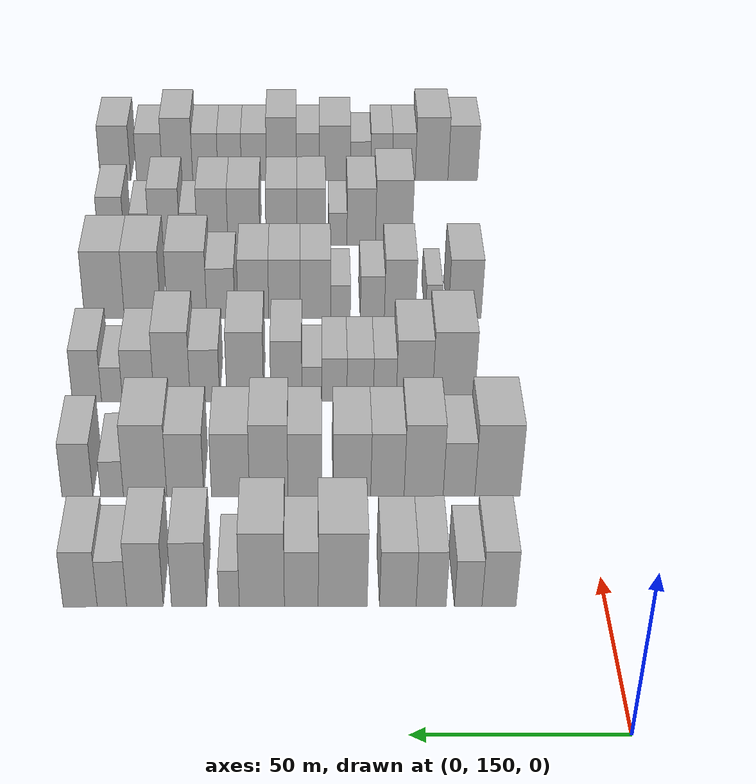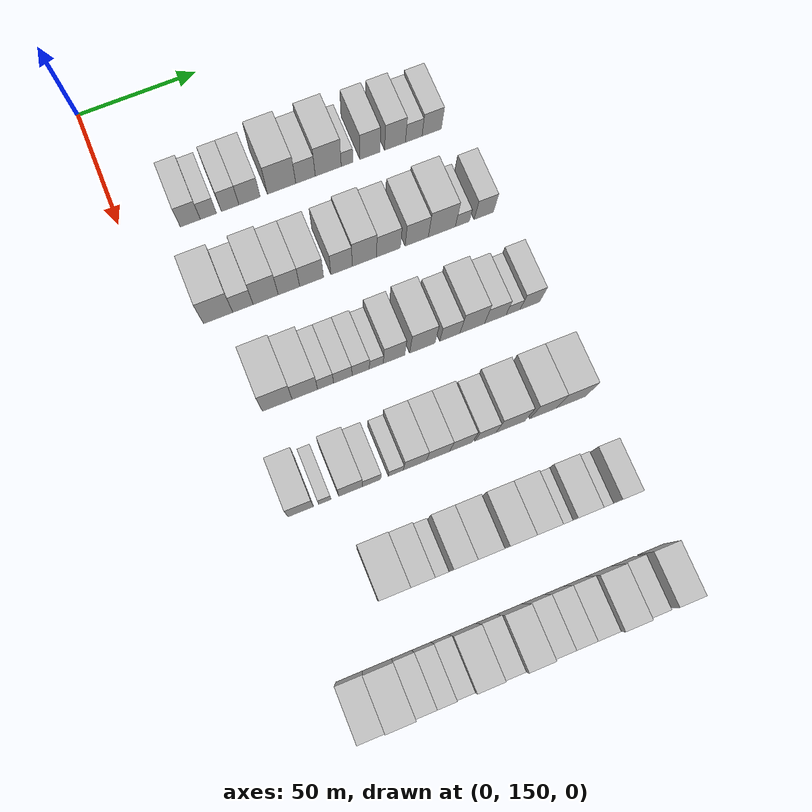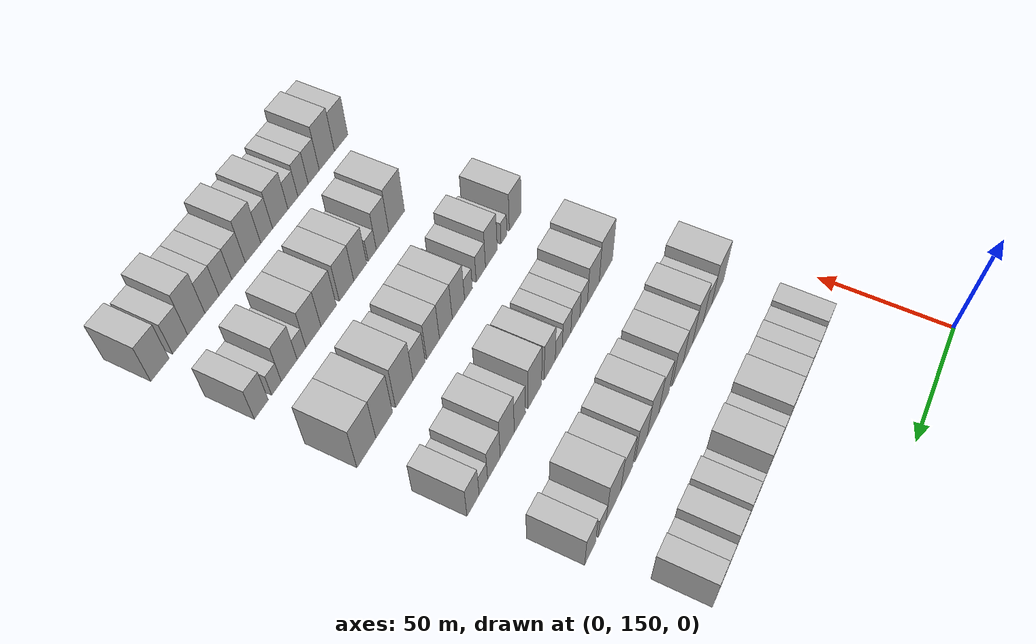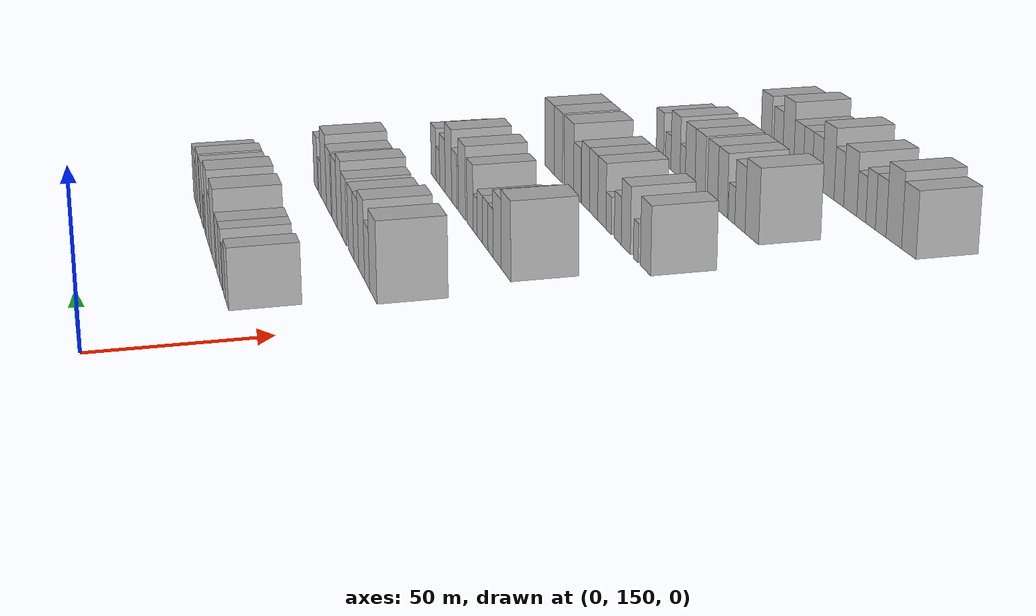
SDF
<sdf version="1.6">
 <world name="default">
  <model name="building_82">
   <static>1</static>
   <pose>50.0000 176.1334 0 0.000000 0.000000 0.000000</pose>
   <link name="link">
    <pose>0 0 9.00 0 0 0</pose>
    <collision name="collision"><geometry><box><size>20.0000 8.2728 18.0000</size></box></geometry></collision>
    <visual name="visual">
     <cast_shadows>0</cast_shadows>
     <geometry><box><size>20.0000 8.2728 18.0000</size></box></geometry>
     <material>
      <script>
       <uri>model://HANNAS_wall/materials/scripts</uri>
       <uri>model://HANNAS_wall/materials/textures</uri>
       <name>vrc/HANNAS_wall</name>
      </script>
     </material>
    </visual>
   </link>
  </model>
  <model name="building_83">
   <static>1</static>
   <pose>50.0000 183.6065 0 0.000000 0.000000 0.000000</pose>
   <link name="link">
    <pose>0 0 7.50 0 0 0</pose>
    <collision name="collision"><geometry><box><size>20.0000 6.6735 15.0000</size></box></geometry></collision>
    <visual name="visual">
     <cast_shadows>0</cast_shadows>
     <geometry><box><size>20.0000 6.6735 15.0000</size></box></geometry>
     <material>
      <script>
       <uri>model://HANNAS_wall/materials/scripts</uri>
       <uri>model://HANNAS_wall/materials/textures</uri>
       <name>vrc/HANNAS_wall</name>
      </script>
     </material>
    </visual>
   </link>
  </model>
  <model name="building_84">
   <static>1</static>
   <pose>50.0000 192.5898 0 0.000000 0.000000 0.000000</pose>
   <link name="link">
    <pose>0 0 9.00 0 0 0</pose>
    <collision name="collision"><geometry><box><size>20.0000 7.2932 18.0000</size></box></geometry></collision>
    <visual name="visual">
     <cast_shadows>0</cast_shadows>
     <geometry><box><size>20.0000 7.2932 18.0000</size></box></geometry>
     <material>
      <script>
       <uri>model://HANNAS_wall/materials/scripts</uri>
       <uri>model://HANNAS_wall/materials/textures</uri>
       <name>vrc/HANNAS_wall</name>
      </script>
     </material>
    </visual>
   </link>
  </model>
  <model name="building_85">
   <static>1</static>
   <pose>50.0000 200.6770 0 0.000000 0.000000 0.000000</pose>
   <link name="link">
    <pose>0 0 9.00 0 0 0</pose>
    <collision name="collision"><geometry><box><size>20.0000 8.8813 18.0000</size></box></geometry></collision>
    <visual name="visual">
     <cast_shadows>0</cast_shadows>
     <geometry><box><size>20.0000 8.8813 18.0000</size></box></geometry>
     <material>
      <script>
       <uri>model://HANNAS_wall/materials/scripts</uri>
       <uri>model://HANNAS_wall/materials/textures</uri>
       <name>vrc/HANNAS_wall</name>
      </script>
     </material>
    </visual>
   </link>
  </model>
  <model name="building_86">
   <static>1</static>
   <pose>50.0000 214.0583 0 0.000000 0.000000 0.000000</pose>
   <link name="link">
    <pose>0 0 12.00 0 0 0</pose>
    <collision name="collision"><geometry><box><size>20.0000 11.8813 24.0000</size></box></geometry></collision>
    <visual name="visual">
     <cast_shadows>0</cast_shadows>
     <geometry><box><size>20.0000 11.8813 24.0000</size></box></geometry>
     <material>
      <script>
       <uri>model://HANNAS_wall/materials/scripts</uri>
       <uri>model://HANNAS_wall/materials/textures</uri>
       <name>vrc/HANNAS_wall</name>
      </script>
     </material>
    </visual>
   </link>
  </model>
  <model name="building_87">
   <static>1</static>
   <pose>50.0000 224.1031 0 0.000000 0.000000 0.000000</pose>
   <link name="link">
    <pose>0 0 9.00 0 0 0</pose>
    <collision name="collision"><geometry><box><size>20.0000 8.2083 18.0000</size></box></geometry></collision>
    <visual name="visual">
     <cast_shadows>0</cast_shadows>
     <geometry><box><size>20.0000 8.2083 18.0000</size></box></geometry>
     <material>
      <script>
       <uri>model://HANNAS_wall/materials/scripts</uri>
       <uri>model://HANNAS_wall/materials/textures</uri>
       <name>vrc/HANNAS_wall</name>
      </script>
     </material>
    </visual>
   </link>
  </model>
  <model name="building_88">
   <static>1</static>
   <pose>50.0000 233.6721 0 0.000000 0.000000 0.000000</pose>
   <link name="link">
    <pose>0 0 12.00 0 0 0</pose>
    <collision name="collision"><geometry><box><size>20.0000 10.9296 24.0000</size></box></geometry></collision>
    <visual name="visual">
     <cast_shadows>0</cast_shadows>
     <geometry><box><size>20.0000 10.9296 24.0000</size></box></geometry>
     <material>
      <script>
       <uri>model://HANNAS_wall/materials/scripts</uri>
       <uri>model://HANNAS_wall/materials/textures</uri>
       <name>vrc/HANNAS_wall</name>
      </script>
     </material>
    </visual>
   </link>
  </model>
  <model name="building_89">
   <static>1</static>
   <pose>50.0000 241.6085 0 0.000000 0.000000 0.000000</pose>
   <link name="link">
    <pose>0 0 6.00 0 0 0</pose>
    <collision name="collision"><geometry><box><size>20.0000 4.9433 12.0000</size></box></geometry></collision>
    <visual name="visual">
     <cast_shadows>0</cast_shadows>
     <geometry><box><size>20.0000 4.9433 12.0000</size></box></geometry>
     <material>
      <script>
       <uri>model://HANNAS_wall/materials/scripts</uri>
       <uri>model://HANNAS_wall/materials/textures</uri>
       <name>vrc/HANNAS_wall</name>
      </script>
     </material>
    </visual>
   </link>
  </model>
  <model name="building_90">
   <static>1</static>
   <pose>50.0000 251.3328 0 0.000000 0.000000 0.000000</pose>
   <link name="link">
    <pose>0 0 10.50 0 0 0</pose>
    <collision name="collision"><geometry><box><size>20.0000 8.5052 21.0000</size></box></geometry></collision>
    <visual name="visual">
     <cast_shadows>0</cast_shadows>
     <geometry><box><size>20.0000 8.5052 21.0000</size></box></geometry>
     <material>
      <script>
       <uri>model://HANNAS_wall/materials/scripts</uri>
       <uri>model://HANNAS_wall/materials/textures</uri>
       <name>vrc/HANNAS_wall</name>
      </script>
     </material>
    </visual>
   </link>
  </model>
  <model name="building_91">
   <static>1</static>
   <pose>50.0000 262.0378 0 0.000000 0.000000 0.000000</pose>
   <link name="link">
    <pose>0 0 10.50 0 0 0</pose>
    <collision name="collision"><geometry><box><size>20.0000 8.9047 21.0000</size></box></geometry></collision>
    <visual name="visual">
     <cast_shadows>0</cast_shadows>
     <geometry><box><size>20.0000 8.9047 21.0000</size></box></geometry>
     <material>
      <script>
       <uri>model://HANNAS_wall/materials/scripts</uri>
       <uri>model://HANNAS_wall/materials/textures</uri>
       <name>vrc/HANNAS_wall</name>
      </script>
     </material>
    </visual>
   </link>
  </model>
  <model name="building_92">
   <static>1</static>
   <pose>50.0000 270.0559 0 0.000000 0.000000 0.000000</pose>
   <link name="link">
    <pose>0 0 7.50 0 0 0</pose>
    <collision name="collision"><geometry><box><size>20.0000 7.1315 15.0000</size></box></geometry></collision>
    <visual name="visual">
     <cast_shadows>0</cast_shadows>
     <geometry><box><size>20.0000 7.1315 15.0000</size></box></geometry>
     <material>
      <script>
       <uri>model://HANNAS_wall/materials/scripts</uri>
       <uri>model://HANNAS_wall/materials/textures</uri>
       <name>vrc/HANNAS_wall</name>
      </script>
     </material>
    </visual>
   </link>
  </model>
  <model name="building_93">
   <static>1</static>
   <pose>50.0000 277.7575 0 0.000000 0.000000 0.000000</pose>
   <link name="link">
    <pose>0 0 9.00 0 0 0</pose>
    <collision name="collision"><geometry><box><size>20.0000 8.2718 18.0000</size></box></geometry></collision>
    <visual name="visual">
     <cast_shadows>0</cast_shadows>
     <geometry><box><size>20.0000 8.2718 18.0000</size></box></geometry>
     <material>
      <script>
       <uri>model://HANNAS_wall/materials/scripts</uri>
       <uri>model://HANNAS_wall/materials/textures</uri>
       <name>vrc/HANNAS_wall</name>
      </script>
     </material>
    </visual>
   </link>
  </model>
  <model name="building_215">
   <static>1</static>
   <pose>90.0000 172.9302 0 0.000000 0.000000 0.000000</pose>
   <link name="link">
    <pose>0 0 12.00 0 0 0</pose>
    <collision name="collision"><geometry><box><size>20.0000 11.8429 24.0000</size></box></geometry></collision>
    <visual name="visual">
     <cast_shadows>0</cast_shadows>
     <geometry><box><size>20.0000 11.8429 24.0000</size></box></geometry>
     <material>
      <script>
       <uri>model://HANNAS_wall/materials/scripts</uri>
       <uri>model://HANNAS_wall/materials/textures</uri>
       <name>vrc/HANNAS_wall</name>
      </script>
     </material>
    </visual>
   </link>
  </model>
  <model name="building_216">
   <static>1</static>
   <pose>90.0000 182.9841 0 0.000000 0.000000 0.000000</pose>
   <link name="link">
    <pose>0 0 9.00 0 0 0</pose>
    <collision name="collision"><geometry><box><size>20.0000 8.2648 18.0000</size></box></geometry></collision>
    <visual name="visual">
     <cast_shadows>0</cast_shadows>
     <geometry><box><size>20.0000 8.2648 18.0000</size></box></geometry>
     <material>
      <script>
       <uri>model://HANNAS_wall/materials/scripts</uri>
       <uri>model://HANNAS_wall/materials/textures</uri>
       <name>vrc/HANNAS_wall</name>
      </script>
     </material>
    </visual>
   </link>
  </model>
  <model name="building_217">
   <static>1</static>
   <pose>90.0000 192.2296 0 0.000000 0.000000 0.000000</pose>
   <link name="link">
    <pose>0 0 12.00 0 0 0</pose>
    <collision name="collision"><geometry><box><size>20.0000 10.2263 24.0000</size></box></geometry></collision>
    <visual name="visual">
     <cast_shadows>0</cast_shadows>
     <geometry><box><size>20.0000 10.2263 24.0000</size></box></geometry>
     <material>
      <script>
       <uri>model://HANNAS_wall/materials/scripts</uri>
       <uri>model://HANNAS_wall/materials/textures</uri>
       <name>vrc/HANNAS_wall</name>
      </script>
     </material>
    </visual>
   </link>
  </model>
  <model name="building_218">
   <static>1</static>
   <pose>90.0000 201.7228 0 0.000000 0.000000 0.000000</pose>
   <link name="link">
    <pose>0 0 10.50 0 0 0</pose>
    <collision name="collision"><geometry><box><size>20.0000 8.7600 21.0000</size></box></geometry></collision>
    <visual name="visual">
     <cast_shadows>0</cast_shadows>
     <geometry><box><size>20.0000 8.7600 21.0000</size></box></geometry>
     <material>
      <script>
       <uri>model://HANNAS_wall/materials/scripts</uri>
       <uri>model://HANNAS_wall/materials/textures</uri>
       <name>vrc/HANNAS_wall</name>
      </script>
     </material>
    </visual>
   </link>
  </model>
  <model name="building_219">
   <static>1</static>
   <pose>90.0000 211.0180 0 0.000000 0.000000 0.000000</pose>
   <link name="link">
    <pose>0 0 10.50 0 0 0</pose>
    <collision name="collision"><geometry><box><size>20.0000 9.8304 21.0000</size></box></geometry></collision>
    <visual name="visual">
     <cast_shadows>0</cast_shadows>
     <geometry><box><size>20.0000 9.8304 21.0000</size></box></geometry>
     <material>
      <script>
       <uri>model://HANNAS_wall/materials/scripts</uri>
       <uri>model://HANNAS_wall/materials/textures</uri>
       <name>vrc/HANNAS_wall</name>
      </script>
     </material>
    </visual>
   </link>
  </model>
  <model name="building_220">
   <static>1</static>
   <pose>90.0000 223.3432 0 0.000000 0.000000 0.000000</pose>
   <link name="link">
    <pose>0 0 10.50 0 0 0</pose>
    <collision name="collision"><geometry><box><size>20.0000 8.8202 21.0000</size></box></geometry></collision>
    <visual name="visual">
     <cast_shadows>0</cast_shadows>
     <geometry><box><size>20.0000 8.8202 21.0000</size></box></geometry>
     <material>
      <script>
       <uri>model://HANNAS_wall/materials/scripts</uri>
       <uri>model://HANNAS_wall/materials/textures</uri>
       <name>vrc/HANNAS_wall</name>
      </script>
     </material>
    </visual>
   </link>
  </model>
  <model name="building_221">
   <static>1</static>
   <pose>90.0000 232.7690 0 0.000000 0.000000 0.000000</pose>
   <link name="link">
    <pose>0 0 12.00 0 0 0</pose>
    <collision name="collision"><geometry><box><size>20.0000 10.0313 24.0000</size></box></geometry></collision>
    <visual name="visual">
     <cast_shadows>0</cast_shadows>
     <geometry><box><size>20.0000 10.0313 24.0000</size></box></geometry>
     <material>
      <script>
       <uri>model://HANNAS_wall/materials/scripts</uri>
       <uri>model://HANNAS_wall/materials/textures</uri>
       <name>vrc/HANNAS_wall</name>
      </script>
     </material>
    </visual>
   </link>
  </model>
  <model name="building_222">
   <static>1</static>
   <pose>90.0000 242.7585 0 0.000000 0.000000 0.000000</pose>
   <link name="link">
    <pose>0 0 10.50 0 0 0</pose>
    <collision name="collision"><geometry><box><size>20.0000 9.9477 21.0000</size></box></geometry></collision>
    <visual name="visual">
     <cast_shadows>0</cast_shadows>
     <geometry><box><size>20.0000 9.9477 21.0000</size></box></geometry>
     <material>
      <script>
       <uri>model://HANNAS_wall/materials/scripts</uri>
       <uri>model://HANNAS_wall/materials/textures</uri>
       <name>vrc/HANNAS_wall</name>
      </script>
     </material>
    </visual>
   </link>
  </model>
  <model name="building_223">
   <static>1</static>
   <pose>90.0000 254.5749 0 0.000000 0.000000 0.000000</pose>
   <link name="link">
    <pose>0 0 10.50 0 0 0</pose>
    <collision name="collision"><geometry><box><size>20.0000 9.6851 21.0000</size></box></geometry></collision>
    <visual name="visual">
     <cast_shadows>0</cast_shadows>
     <geometry><box><size>20.0000 9.6851 21.0000</size></box></geometry>
     <material>
      <script>
       <uri>model://HANNAS_wall/materials/scripts</uri>
       <uri>model://HANNAS_wall/materials/textures</uri>
       <name>vrc/HANNAS_wall</name>
      </script>
     </material>
    </visual>
   </link>
  </model>
  <model name="building_224">
   <static>1</static>
   <pose>90.0000 265.0969 0 0.000000 0.000000 0.000000</pose>
   <link name="link">
    <pose>0 0 12.00 0 0 0</pose>
    <collision name="collision"><geometry><box><size>20.0000 11.3589 24.0000</size></box></geometry></collision>
    <visual name="visual">
     <cast_shadows>0</cast_shadows>
     <geometry><box><size>20.0000 11.3589 24.0000</size></box></geometry>
     <material>
      <script>
       <uri>model://HANNAS_wall/materials/scripts</uri>
       <uri>model://HANNAS_wall/materials/textures</uri>
       <name>vrc/HANNAS_wall</name>
      </script>
     </material>
    </visual>
   </link>
  </model>
  <model name="building_225">
   <static>1</static>
   <pose>90.0000 273.7621 0 0.000000 0.000000 0.000000</pose>
   <link name="link">
    <pose>0 0 6.00 0 0 0</pose>
    <collision name="collision"><geometry><box><size>20.0000 5.9714 12.0000</size></box></geometry></collision>
    <visual name="visual">
     <cast_shadows>0</cast_shadows>
     <geometry><box><size>20.0000 5.9714 12.0000</size></box></geometry>
     <material>
      <script>
       <uri>model://HANNAS_wall/materials/scripts</uri>
       <uri>model://HANNAS_wall/materials/textures</uri>
       <name>vrc/HANNAS_wall</name>
      </script>
     </material>
    </visual>
   </link>
  </model>
  <model name="building_226">
   <static>1</static>
   <pose>90.0000 282.8038 0 0.000000 0.000000 0.000000</pose>
   <link name="link">
    <pose>0 0 9.00 0 0 0</pose>
    <collision name="collision"><geometry><box><size>20.0000 8.1119 18.0000</size></box></geometry></collision>
    <visual name="visual">
     <cast_shadows>0</cast_shadows>
     <geometry><box><size>20.0000 8.1119 18.0000</size></box></geometry>
     <material>
      <script>
       <uri>model://HANNAS_wall/materials/scripts</uri>
       <uri>model://HANNAS_wall/materials/textures</uri>
       <name>vrc/HANNAS_wall</name>
      </script>
     </material>
    </visual>
   </link>
  </model>
  <model name="building_345">
   <static>1</static>
   <pose>130.0000 181.6448 0 0.000000 0.000000 0.000000</pose>
   <link name="link">
    <pose>0 0 12.00 0 0 0</pose>
    <collision name="collision"><geometry><box><size>20.0000 11.8467 24.0000</size></box></geometry></collision>
    <visual name="visual">
     <cast_shadows>0</cast_shadows>
     <geometry><box><size>20.0000 11.8467 24.0000</size></box></geometry>
     <material>
      <script>
       <uri>model://HANNAS_wall/materials/scripts</uri>
       <uri>model://HANNAS_wall/materials/textures</uri>
       <name>vrc/HANNAS_wall</name>
      </script>
     </material>
    </visual>
   </link>
  </model>
  <model name="building_346">
   <static>1</static>
   <pose>130.0000 192.6522 0 0.000000 0.000000 0.000000</pose>
   <link name="link">
    <pose>0 0 10.50 0 0 0</pose>
    <collision name="collision"><geometry><box><size>20.0000 10.1682 21.0000</size></box></geometry></collision>
    <visual name="visual">
     <cast_shadows>0</cast_shadows>
     <geometry><box><size>20.0000 10.1682 21.0000</size></box></geometry>
     <material>
      <script>
       <uri>model://HANNAS_wall/materials/scripts</uri>
       <uri>model://HANNAS_wall/materials/textures</uri>
       <name>vrc/HANNAS_wall</name>
      </script>
     </material>
    </visual>
   </link>
  </model>
  <model name="building_347">
   <static>1</static>
   <pose>130.0000 200.9521 0 0.000000 0.000000 0.000000</pose>
   <link name="link">
    <pose>0 0 7.50 0 0 0</pose>
    <collision name="collision"><geometry><box><size>20.0000 6.4316 15.0000</size></box></geometry></collision>
    <visual name="visual">
     <cast_shadows>0</cast_shadows>
     <geometry><box><size>20.0000 6.4316 15.0000</size></box></geometry>
     <material>
      <script>
       <uri>model://HANNAS_wall/materials/scripts</uri>
       <uri>model://HANNAS_wall/materials/textures</uri>
       <name>vrc/HANNAS_wall</name>
      </script>
     </material>
    </visual>
   </link>
  </model>
  <model name="building_348">
   <static>1</static>
   <pose>130.0000 207.8884 0 0.000000 0.000000 0.000000</pose>
   <link name="link">
    <pose>0 0 7.50 0 0 0</pose>
    <collision name="collision"><geometry><box><size>20.0000 7.4409 15.0000</size></box></geometry></collision>
    <visual name="visual">
     <cast_shadows>0</cast_shadows>
     <geometry><box><size>20.0000 7.4409 15.0000</size></box></geometry>
     <material>
      <script>
       <uri>model://HANNAS_wall/materials/scripts</uri>
       <uri>model://HANNAS_wall/materials/textures</uri>
       <name>vrc/HANNAS_wall</name>
      </script>
     </material>
    </visual>
   </link>
  </model>
  <model name="building_349">
   <static>1</static>
   <pose>130.0000 215.1001 0 0.000000 0.000000 0.000000</pose>
   <link name="link">
    <pose>0 0 7.50 0 0 0</pose>
    <collision name="collision"><geometry><box><size>20.0000 6.9825 15.0000</size></box></geometry></collision>
    <visual name="visual">
     <cast_shadows>0</cast_shadows>
     <geometry><box><size>20.0000 6.9825 15.0000</size></box></geometry>
     <material>
      <script>
       <uri>model://HANNAS_wall/materials/scripts</uri>
       <uri>model://HANNAS_wall/materials/textures</uri>
       <name>vrc/HANNAS_wall</name>
      </script>
     </material>
    </visual>
   </link>
  </model>
  <model name="building_350">
   <static>1</static>
   <pose>130.0000 221.4183 0 0.000000 0.000000 0.000000</pose>
   <link name="link">
    <pose>0 0 6.00 0 0 0</pose>
    <collision name="collision"><geometry><box><size>20.0000 5.6541 12.0000</size></box></geometry></collision>
    <visual name="visual">
     <cast_shadows>0</cast_shadows>
     <geometry><box><size>20.0000 5.6541 12.0000</size></box></geometry>
     <material>
      <script>
       <uri>model://HANNAS_wall/materials/scripts</uri>
       <uri>model://HANNAS_wall/materials/textures</uri>
       <name>vrc/HANNAS_wall</name>
      </script>
     </material>
    </visual>
   </link>
  </model>
  <model name="building_351">
   <static>1</static>
   <pose>130.0000 228.5969 0 0.000000 0.000000 0.000000</pose>
   <link name="link">
    <pose>0 0 10.50 0 0 0</pose>
    <collision name="collision"><geometry><box><size>20.0000 8.7029 21.0000</size></box></geometry></collision>
    <visual name="visual">
     <cast_shadows>0</cast_shadows>
     <geometry><box><size>20.0000 8.7029 21.0000</size></box></geometry>
     <material>
      <script>
       <uri>model://HANNAS_wall/materials/scripts</uri>
       <uri>model://HANNAS_wall/materials/textures</uri>
       <name>vrc/HANNAS_wall</name>
      </script>
     </material>
    </visual>
   </link>
  </model>
  <model name="building_352">
   <static>1</static>
   <pose>130.0000 240.1101 0 0.000000 0.000000 0.000000</pose>
   <link name="link">
    <pose>0 0 12.00 0 0 0</pose>
    <collision name="collision"><geometry><box><size>20.0000 10.3235 24.0000</size></box></geometry></collision>
    <visual name="visual">
     <cast_shadows>0</cast_shadows>
     <geometry><box><size>20.0000 10.3235 24.0000</size></box></geometry>
     <material>
      <script>
       <uri>model://HANNAS_wall/materials/scripts</uri>
       <uri>model://HANNAS_wall/materials/textures</uri>
       <name>vrc/HANNAS_wall</name>
      </script>
     </material>
    </visual>
   </link>
  </model>
  <model name="building_353">
   <static>1</static>
   <pose>130.0000 251.4101 0 0.000000 0.000000 0.000000</pose>
   <link name="link">
    <pose>0 0 9.00 0 0 0</pose>
    <collision name="collision"><geometry><box><size>20.0000 8.2766 18.0000</size></box></geometry></collision>
    <visual name="visual">
     <cast_shadows>0</cast_shadows>
     <geometry><box><size>20.0000 8.2766 18.0000</size></box></geometry>
     <material>
      <script>
       <uri>model://HANNAS_wall/materials/scripts</uri>
       <uri>model://HANNAS_wall/materials/textures</uri>
       <name>vrc/HANNAS_wall</name>
      </script>
     </material>
    </visual>
   </link>
  </model>
  <model name="building_354">
   <static>1</static>
   <pose>130.0000 260.6258 0 0.000000 0.000000 0.000000</pose>
   <link name="link">
    <pose>0 0 12.00 0 0 0</pose>
    <collision name="collision"><geometry><box><size>20.0000 10.1548 24.0000</size></box></geometry></collision>
    <visual name="visual">
     <cast_shadows>0</cast_shadows>
     <geometry><box><size>20.0000 10.1548 24.0000</size></box></geometry>
     <material>
      <script>
       <uri>model://HANNAS_wall/materials/scripts</uri>
       <uri>model://HANNAS_wall/materials/textures</uri>
       <name>vrc/HANNAS_wall</name>
      </script>
     </material>
    </visual>
   </link>
  </model>
  <model name="building_355">
   <static>1</static>
   <pose>130.0000 270.1366 0 0.000000 0.000000 0.000000</pose>
   <link name="link">
    <pose>0 0 9.00 0 0 0</pose>
    <collision name="collision"><geometry><box><size>20.0000 8.8669 18.0000</size></box></geometry></collision>
    <visual name="visual">
     <cast_shadows>0</cast_shadows>
     <geometry><box><size>20.0000 8.8669 18.0000</size></box></geometry>
     <material>
      <script>
       <uri>model://HANNAS_wall/materials/scripts</uri>
       <uri>model://HANNAS_wall/materials/textures</uri>
       <name>vrc/HANNAS_wall</name>
      </script>
     </material>
    </visual>
   </link>
  </model>
  <model name="building_356">
   <static>1</static>
   <pose>130.0000 277.5058 0 0.000000 0.000000 0.000000</pose>
   <link name="link">
    <pose>0 0 6.00 0 0 0</pose>
    <collision name="collision"><geometry><box><size>20.0000 5.8714 12.0000</size></box></geometry></collision>
    <visual name="visual">
     <cast_shadows>0</cast_shadows>
     <geometry><box><size>20.0000 5.8714 12.0000</size></box></geometry>
     <material>
      <script>
       <uri>model://HANNAS_wall/materials/scripts</uri>
       <uri>model://HANNAS_wall/materials/textures</uri>
       <name>vrc/HANNAS_wall</name>
      </script>
     </material>
    </visual>
   </link>
  </model>
  <model name="building_357">
   <static>1</static>
   <pose>130.0000 284.5268 0 0.000000 0.000000 0.000000</pose>
   <link name="link">
    <pose>0 0 9.00 0 0 0</pose>
    <collision name="collision"><geometry><box><size>20.0000 8.1707 18.0000</size></box></geometry></collision>
    <visual name="visual">
     <cast_shadows>0</cast_shadows>
     <geometry><box><size>20.0000 8.1707 18.0000</size></box></geometry>
     <material>
      <script>
       <uri>model://HANNAS_wall/materials/scripts</uri>
       <uri>model://HANNAS_wall/materials/textures</uri>
       <name>vrc/HANNAS_wall</name>
      </script>
     </material>
    </visual>
   </link>
  </model>
  <model name="building_487">
   <static>1</static>
   <pose>170.0000 175.5476 0 0.000000 0.000000 0.000000</pose>
   <link name="link">
    <pose>0 0 10.50 0 0 0</pose>
    <collision name="collision"><geometry><box><size>20.0000 9.8689 21.0000</size></box></geometry></collision>
    <visual name="visual">
     <cast_shadows>0</cast_shadows>
     <geometry><box><size>20.0000 9.8689 21.0000</size></box></geometry>
     <material>
      <script>
       <uri>model://HANNAS_wall/materials/scripts</uri>
       <uri>model://HANNAS_wall/materials/textures</uri>
       <name>vrc/HANNAS_wall</name>
      </script>
     </material>
    </visual>
   </link>
  </model>
  <model name="building_488">
   <static>1</static>
   <pose>170.0000 184.8915 0 0.000000 0.000000 0.000000</pose>
   <link name="link">
    <pose>0 0 6.00 0 0 0</pose>
    <collision name="collision"><geometry><box><size>20.0000 4.8187 12.0000</size></box></geometry></collision>
    <visual name="visual">
     <cast_shadows>0</cast_shadows>
     <geometry><box><size>20.0000 4.8187 12.0000</size></box></geometry>
     <material>
      <script>
       <uri>model://HANNAS_wall/materials/scripts</uri>
       <uri>model://HANNAS_wall/materials/textures</uri>
       <name>vrc/HANNAS_wall</name>
      </script>
     </material>
    </visual>
   </link>
  </model>
  <model name="building_489">
   <static>1</static>
   <pose>170.0000 194.9615 0 0.000000 0.000000 0.000000</pose>
   <link name="link">
    <pose>0 0 10.50 0 0 0</pose>
    <collision name="collision"><geometry><box><size>20.0000 9.3214 21.0000</size></box></geometry></collision>
    <visual name="visual">
     <cast_shadows>0</cast_shadows>
     <geometry><box><size>20.0000 9.3214 21.0000</size></box></geometry>
     <material>
      <script>
       <uri>model://HANNAS_wall/materials/scripts</uri>
       <uri>model://HANNAS_wall/materials/textures</uri>
       <name>vrc/HANNAS_wall</name>
      </script>
     </material>
    </visual>
   </link>
  </model>
  <model name="building_490">
   <static>1</static>
   <pose>170.0000 203.2286 0 0.000000 0.000000 0.000000</pose>
   <link name="link">
    <pose>0 0 7.50 0 0 0</pose>
    <collision name="collision"><geometry><box><size>20.0000 7.2128 15.0000</size></box></geometry></collision>
    <visual name="visual">
     <cast_shadows>0</cast_shadows>
     <geometry><box><size>20.0000 7.2128 15.0000</size></box></geometry>
     <material>
      <script>
       <uri>model://HANNAS_wall/materials/scripts</uri>
       <uri>model://HANNAS_wall/materials/textures</uri>
       <name>vrc/HANNAS_wall</name>
      </script>
     </material>
    </visual>
   </link>
  </model>
  <model name="building_491">
   <static>1</static>
   <pose>170.0000 212.7787 0 0.000000 0.000000 0.000000</pose>
   <link name="link">
    <pose>0 0 6.00 0 0 0</pose>
    <collision name="collision"><geometry><box><size>20.0000 5.8874 12.0000</size></box></geometry></collision>
    <visual name="visual">
     <cast_shadows>0</cast_shadows>
     <geometry><box><size>20.0000 5.8874 12.0000</size></box></geometry>
     <material>
      <script>
       <uri>model://HANNAS_wall/materials/scripts</uri>
       <uri>model://HANNAS_wall/materials/textures</uri>
       <name>vrc/HANNAS_wall</name>
      </script>
     </material>
    </visual>
   </link>
  </model>
  <model name="building_492">
   <static>1</static>
   <pose>170.0000 220.3122 0 0.000000 0.000000 0.000000</pose>
   <link name="link">
    <pose>0 0 10.50 0 0 0</pose>
    <collision name="collision"><geometry><box><size>20.0000 9.1796 21.0000</size></box></geometry></collision>
    <visual name="visual">
     <cast_shadows>0</cast_shadows>
     <geometry><box><size>20.0000 9.1796 21.0000</size></box></geometry>
     <material>
      <script>
       <uri>model://HANNAS_wall/materials/scripts</uri>
       <uri>model://HANNAS_wall/materials/textures</uri>
       <name>vrc/HANNAS_wall</name>
      </script>
     </material>
    </visual>
   </link>
  </model>
  <model name="building_493">
   <static>1</static>
   <pose>170.0000 229.5803 0 0.000000 0.000000 0.000000</pose>
   <link name="link">
    <pose>0 0 10.50 0 0 0</pose>
    <collision name="collision"><geometry><box><size>20.0000 9.3565 21.0000</size></box></geometry></collision>
    <visual name="visual">
     <cast_shadows>0</cast_shadows>
     <geometry><box><size>20.0000 9.3565 21.0000</size></box></geometry>
     <material>
      <script>
       <uri>model://HANNAS_wall/materials/scripts</uri>
       <uri>model://HANNAS_wall/materials/textures</uri>
       <name>vrc/HANNAS_wall</name>
      </script>
     </material>
    </visual>
   </link>
  </model>
  <model name="building_494">
   <static>1</static>
   <pose>170.0000 238.8371 0 0.000000 0.000000 0.000000</pose>
   <link name="link">
    <pose>0 0 10.50 0 0 0</pose>
    <collision name="collision"><geometry><box><size>20.0000 9.1570 21.0000</size></box></geometry></collision>
    <visual name="visual">
     <cast_shadows>0</cast_shadows>
     <geometry><box><size>20.0000 9.1570 21.0000</size></box></geometry>
     <material>
      <script>
       <uri>model://HANNAS_wall/materials/scripts</uri>
       <uri>model://HANNAS_wall/materials/textures</uri>
       <name>vrc/HANNAS_wall</name>
      </script>
     </material>
    </visual>
   </link>
  </model>
  <model name="building_495">
   <static>1</static>
   <pose>170.0000 248.6258 0 0.000000 0.000000 0.000000</pose>
   <link name="link">
    <pose>0 0 9.00 0 0 0</pose>
    <collision name="collision"><geometry><box><size>20.0000 8.4205 18.0000</size></box></geometry></collision>
    <visual name="visual">
     <cast_shadows>0</cast_shadows>
     <geometry><box><size>20.0000 8.4205 18.0000</size></box></geometry>
     <material>
      <script>
       <uri>model://HANNAS_wall/materials/scripts</uri>
       <uri>model://HANNAS_wall/materials/textures</uri>
       <name>vrc/HANNAS_wall</name>
      </script>
     </material>
    </visual>
   </link>
  </model>
  <model name="building_496">
   <static>1</static>
   <pose>170.0000 258.7358 0 0.000000 0.000000 0.000000</pose>
   <link name="link">
    <pose>0 0 12.00 0 0 0</pose>
    <collision name="collision"><geometry><box><size>20.0000 11.7993 24.0000</size></box></geometry></collision>
    <visual name="visual">
     <cast_shadows>0</cast_shadows>
     <geometry><box><size>20.0000 11.7993 24.0000</size></box></geometry>
     <material>
      <script>
       <uri>model://HANNAS_wall/materials/scripts</uri>
       <uri>model://HANNAS_wall/materials/textures</uri>
       <name>vrc/HANNAS_wall</name>
      </script>
     </material>
    </visual>
   </link>
  </model>
  <model name="building_497">
   <static>1</static>
   <pose>170.0000 272.0865 0 0.000000 0.000000 0.000000</pose>
   <link name="link">
    <pose>0 0 12.00 0 0 0</pose>
    <collision name="collision"><geometry><box><size>20.0000 10.9022 24.0000</size></box></geometry></collision>
    <visual name="visual">
     <cast_shadows>0</cast_shadows>
     <geometry><box><size>20.0000 10.9022 24.0000</size></box></geometry>
     <material>
      <script>
       <uri>model://HANNAS_wall/materials/scripts</uri>
       <uri>model://HANNAS_wall/materials/textures</uri>
       <name>vrc/HANNAS_wall</name>
      </script>
     </material>
    </visual>
   </link>
  </model>
  <model name="building_498">
   <static>1</static>
   <pose>170.0000 283.5010 0 0.000000 0.000000 0.000000</pose>
   <link name="link">
    <pose>0 0 12.00 0 0 0</pose>
    <collision name="collision"><geometry><box><size>20.0000 11.9268 24.0000</size></box></geometry></collision>
    <visual name="visual">
     <cast_shadows>0</cast_shadows>
     <geometry><box><size>20.0000 11.9268 24.0000</size></box></geometry>
     <material>
      <script>
       <uri>model://HANNAS_wall/materials/scripts</uri>
       <uri>model://HANNAS_wall/materials/textures</uri>
       <name>vrc/HANNAS_wall</name>
      </script>
     </material>
    </visual>
   </link>
  </model>
  <model name="building_626">
   <static>1</static>
   <pose>210.0000 195.2144 0 0.000000 0.000000 0.000000</pose>
   <link name="link">
    <pose>0 0 12.00 0 0 0</pose>
    <collision name="collision"><geometry><box><size>20.0000 11.6637 24.0000</size></box></geometry></collision>
    <visual name="visual">
     <cast_shadows>0</cast_shadows>
     <geometry><box><size>20.0000 11.6637 24.0000</size></box></geometry>
     <material>
      <script>
       <uri>model://HANNAS_wall/materials/scripts</uri>
       <uri>model://HANNAS_wall/materials/textures</uri>
       <name>vrc/HANNAS_wall</name>
      </script>
     </material>
    </visual>
   </link>
  </model>
  <model name="building_627">
   <static>1</static>
   <pose>210.0000 205.5928 0 0.000000 0.000000 0.000000</pose>
   <link name="link">
    <pose>0 0 10.50 0 0 0</pose>
    <collision name="collision"><geometry><box><size>20.0000 9.0931 21.0000</size></box></geometry></collision>
    <visual name="visual">
     <cast_shadows>0</cast_shadows>
     <geometry><box><size>20.0000 9.0931 21.0000</size></box></geometry>
     <material>
      <script>
       <uri>model://HANNAS_wall/materials/scripts</uri>
       <uri>model://HANNAS_wall/materials/textures</uri>
       <name>vrc/HANNAS_wall</name>
      </script>
     </material>
    </visual>
   </link>
  </model>
  <model name="building_628">
   <static>1</static>
   <pose>210.0000 213.0553 0 0.000000 0.000000 0.000000</pose>
   <link name="link">
    <pose>0 0 6.00 0 0 0</pose>
    <collision name="collision"><geometry><box><size>20.0000 5.8317 12.0000</size></box></geometry></collision>
    <visual name="visual">
     <cast_shadows>0</cast_shadows>
     <geometry><box><size>20.0000 5.8317 12.0000</size></box></geometry>
     <material>
      <script>
       <uri>model://HANNAS_wall/materials/scripts</uri>
       <uri>model://HANNAS_wall/materials/textures</uri>
       <name>vrc/HANNAS_wall</name>
      </script>
     </material>
    </visual>
   </link>
  </model>
  <model name="building_629">
   <static>1</static>
   <pose>210.0000 221.4762 0 0.000000 0.000000 0.000000</pose>
   <link name="link">
    <pose>0 0 10.50 0 0 0</pose>
    <collision name="collision"><geometry><box><size>20.0000 9.0102 21.0000</size></box></geometry></collision>
    <visual name="visual">
     <cast_shadows>0</cast_shadows>
     <geometry><box><size>20.0000 9.0102 21.0000</size></box></geometry>
     <material>
      <script>
       <uri>model://HANNAS_wall/materials/scripts</uri>
       <uri>model://HANNAS_wall/materials/textures</uri>
       <name>vrc/HANNAS_wall</name>
      </script>
     </material>
    </visual>
   </link>
  </model>
  <model name="building_630">
   <static>1</static>
   <pose>210.0000 230.9210 0 0.000000 0.000000 0.000000</pose>
   <link name="link">
    <pose>0 0 10.50 0 0 0</pose>
    <collision name="collision"><geometry><box><size>20.0000 9.8794 21.0000</size></box></geometry></collision>
    <visual name="visual">
     <cast_shadows>0</cast_shadows>
     <geometry><box><size>20.0000 9.8794 21.0000</size></box></geometry>
     <material>
      <script>
       <uri>model://HANNAS_wall/materials/scripts</uri>
       <uri>model://HANNAS_wall/materials/textures</uri>
       <name>vrc/HANNAS_wall</name>
      </script>
     </material>
    </visual>
   </link>
  </model>
  <model name="building_631">
   <static>1</static>
   <pose>210.0000 242.9493 0 0.000000 0.000000 0.000000</pose>
   <link name="link">
    <pose>0 0 10.50 0 0 0</pose>
    <collision name="collision"><geometry><box><size>20.0000 10.1773 21.0000</size></box></geometry></collision>
    <visual name="visual">
     <cast_shadows>0</cast_shadows>
     <geometry><box><size>20.0000 10.1773 21.0000</size></box></geometry>
     <material>
      <script>
       <uri>model://HANNAS_wall/materials/scripts</uri>
       <uri>model://HANNAS_wall/materials/textures</uri>
       <name>vrc/HANNAS_wall</name>
      </script>
     </material>
    </visual>
   </link>
  </model>
  <model name="building_632">
   <static>1</static>
   <pose>210.0000 252.9165 0 0.000000 0.000000 0.000000</pose>
   <link name="link">
    <pose>0 0 10.50 0 0 0</pose>
    <collision name="collision"><geometry><box><size>20.0000 9.7569 21.0000</size></box></geometry></collision>
    <visual name="visual">
     <cast_shadows>0</cast_shadows>
     <geometry><box><size>20.0000 9.7569 21.0000</size></box></geometry>
     <material>
      <script>
       <uri>model://HANNAS_wall/materials/scripts</uri>
       <uri>model://HANNAS_wall/materials/textures</uri>
       <name>vrc/HANNAS_wall</name>
      </script>
     </material>
    </visual>
   </link>
  </model>
  <model name="building_633">
   <static>1</static>
   <pose>210.0000 260.5584 0 0.000000 0.000000 0.000000</pose>
   <link name="link">
    <pose>0 0 6.00 0 0 0</pose>
    <collision name="collision"><geometry><box><size>20.0000 5.5270 12.0000</size></box></geometry></collision>
    <visual name="visual">
     <cast_shadows>0</cast_shadows>
     <geometry><box><size>20.0000 5.5270 12.0000</size></box></geometry>
     <material>
      <script>
       <uri>model://HANNAS_wall/materials/scripts</uri>
       <uri>model://HANNAS_wall/materials/textures</uri>
       <name>vrc/HANNAS_wall</name>
      </script>
     </material>
    </visual>
   </link>
  </model>
  <model name="building_634">
   <static>1</static>
   <pose>210.0000 268.2136 0 0.000000 0.000000 0.000000</pose>
   <link name="link">
    <pose>0 0 10.50 0 0 0</pose>
    <collision name="collision"><geometry><box><size>20.0000 9.7835 21.0000</size></box></geometry></collision>
    <visual name="visual">
     <cast_shadows>0</cast_shadows>
     <geometry><box><size>20.0000 9.7835 21.0000</size></box></geometry>
     <material>
      <script>
       <uri>model://HANNAS_wall/materials/scripts</uri>
       <uri>model://HANNAS_wall/materials/textures</uri>
       <name>vrc/HANNAS_wall</name>
      </script>
     </material>
    </visual>
   </link>
  </model>
  <model name="building_635">
   <static>1</static>
   <pose>210.0000 276.0572 0 0.000000 0.000000 0.000000</pose>
   <link name="link">
    <pose>0 0 6.00 0 0 0</pose>
    <collision name="collision"><geometry><box><size>20.0000 5.9037 12.0000</size></box></geometry></collision>
    <visual name="visual">
     <cast_shadows>0</cast_shadows>
     <geometry><box><size>20.0000 5.9037 12.0000</size></box></geometry>
     <material>
      <script>
       <uri>model://HANNAS_wall/materials/scripts</uri>
       <uri>model://HANNAS_wall/materials/textures</uri>
       <name>vrc/HANNAS_wall</name>
      </script>
     </material>
    </visual>
   </link>
  </model>
  <model name="building_636">
   <static>1</static>
   <pose>210.0000 285.1405 0 0.000000 0.000000 0.000000</pose>
   <link name="link">
    <pose>0 0 9.00 0 0 0</pose>
    <collision name="collision"><geometry><box><size>20.0000 8.2628 18.0000</size></box></geometry></collision>
    <visual name="visual">
     <cast_shadows>0</cast_shadows>
     <geometry><box><size>20.0000 8.2628 18.0000</size></box></geometry>
     <material>
      <script>
       <uri>model://HANNAS_wall/materials/scripts</uri>
       <uri>model://HANNAS_wall/materials/textures</uri>
       <name>vrc/HANNAS_wall</name>
      </script>
     </material>
    </visual>
   </link>
  </model>
  <model name="building_762">
   <static>1</static>
   <pose>250.0000 170.2587 0 0.000000 0.000000 0.000000</pose>
   <link name="link">
    <pose>0 0 10.50 0 0 0</pose>
    <collision name="collision"><geometry><box><size>20.0000 9.9846 21.0000</size></box></geometry></collision>
    <visual name="visual">
     <cast_shadows>0</cast_shadows>
     <geometry><box><size>20.0000 9.9846 21.0000</size></box></geometry>
     <material>
      <script>
       <uri>model://HANNAS_wall/materials/scripts</uri>
       <uri>model://HANNAS_wall/materials/textures</uri>
       <name>vrc/HANNAS_wall</name>
      </script>
     </material>
    </visual>
   </link>
  </model>
  <model name="building_763">
   <static>1</static>
   <pose>250.0000 180.7807 0 0.000000 0.000000 0.000000</pose>
   <link name="link">
    <pose>0 0 12.00 0 0 0</pose>
    <collision name="collision"><geometry><box><size>20.0000 11.0594 24.0000</size></box></geometry></collision>
    <visual name="visual">
     <cast_shadows>0</cast_shadows>
     <geometry><box><size>20.0000 11.0594 24.0000</size></box></geometry>
     <material>
      <script>
       <uri>model://HANNAS_wall/materials/scripts</uri>
       <uri>model://HANNAS_wall/materials/textures</uri>
       <name>vrc/HANNAS_wall</name>
      </script>
     </material>
    </visual>
   </link>
  </model>
  <model name="building_764">
   <static>1</static>
   <pose>250.0000 190.2367 0 0.000000 0.000000 0.000000</pose>
   <link name="link">
    <pose>0 0 9.00 0 0 0</pose>
    <collision name="collision"><geometry><box><size>20.0000 7.8526 18.0000</size></box></geometry></collision>
    <visual name="visual">
     <cast_shadows>0</cast_shadows>
     <geometry><box><size>20.0000 7.8526 18.0000</size></box></geometry>
     <material>
      <script>
       <uri>model://HANNAS_wall/materials/scripts</uri>
       <uri>model://HANNAS_wall/materials/textures</uri>
       <name>vrc/HANNAS_wall</name>
      </script>
     </material>
    </visual>
   </link>
  </model>
  <model name="building_765">
   <static>1</static>
   <pose>250.0000 197.7811 0 0.000000 0.000000 0.000000</pose>
   <link name="link">
    <pose>0 0 9.00 0 0 0</pose>
    <collision name="collision"><geometry><box><size>20.0000 7.2362 18.0000</size></box></geometry></collision>
    <visual name="visual">
     <cast_shadows>0</cast_shadows>
     <geometry><box><size>20.0000 7.2362 18.0000</size></box></geometry>
     <material>
      <script>
       <uri>model://HANNAS_wall/materials/scripts</uri>
       <uri>model://HANNAS_wall/materials/textures</uri>
       <name>vrc/HANNAS_wall</name>
      </script>
     </material>
    </visual>
   </link>
  </model>
  <model name="building_766">
   <static>1</static>
   <pose>250.0000 204.8366 0 0.000000 0.000000 0.000000</pose>
   <link name="link">
    <pose>0 0 7.50 0 0 0</pose>
    <collision name="collision"><geometry><box><size>20.0000 6.8749 15.0000</size></box></geometry></collision>
    <visual name="visual">
     <cast_shadows>0</cast_shadows>
     <geometry><box><size>20.0000 6.8749 15.0000</size></box></geometry>
     <material>
      <script>
       <uri>model://HANNAS_wall/materials/scripts</uri>
       <uri>model://HANNAS_wall/materials/textures</uri>
       <name>vrc/HANNAS_wall</name>
      </script>
     </material>
    </visual>
   </link>
  </model>
  <model name="building_767">
   <static>1</static>
   <pose>250.0000 213.4837 0 0.000000 0.000000 0.000000</pose>
   <link name="link">
    <pose>0 0 10.50 0 0 0</pose>
    <collision name="collision"><geometry><box><size>20.0000 10.4192 21.0000</size></box></geometry></collision>
    <visual name="visual">
     <cast_shadows>0</cast_shadows>
     <geometry><box><size>20.0000 10.4192 21.0000</size></box></geometry>
     <material>
      <script>
       <uri>model://HANNAS_wall/materials/scripts</uri>
       <uri>model://HANNAS_wall/materials/textures</uri>
       <name>vrc/HANNAS_wall</name>
      </script>
     </material>
    </visual>
   </link>
  </model>
  <model name="building_768">
   <static>1</static>
   <pose>250.0000 222.5829 0 0.000000 0.000000 0.000000</pose>
   <link name="link">
    <pose>0 0 9.00 0 0 0</pose>
    <collision name="collision"><geometry><box><size>20.0000 7.7793 18.0000</size></box></geometry></collision>
    <visual name="visual">
     <cast_shadows>0</cast_shadows>
     <geometry><box><size>20.0000 7.7793 18.0000</size></box></geometry>
     <material>
      <script>
       <uri>model://HANNAS_wall/materials/scripts</uri>
       <uri>model://HANNAS_wall/materials/textures</uri>
       <name>vrc/HANNAS_wall</name>
      </script>
     </material>
    </visual>
   </link>
  </model>
  <model name="building_769">
   <static>1</static>
   <pose>250.0000 231.4879 0 0.000000 0.000000 0.000000</pose>
   <link name="link">
    <pose>0 0 12.00 0 0 0</pose>
    <collision name="collision"><geometry><box><size>20.0000 10.0308 24.0000</size></box></geometry></collision>
    <visual name="visual">
     <cast_shadows>0</cast_shadows>
     <geometry><box><size>20.0000 10.0308 24.0000</size></box></geometry>
     <material>
      <script>
       <uri>model://HANNAS_wall/materials/scripts</uri>
       <uri>model://HANNAS_wall/materials/textures</uri>
       <name>vrc/HANNAS_wall</name>
      </script>
     </material>
    </visual>
   </link>
  </model>
  <model name="building_770">
   <static>1</static>
   <pose>250.0000 240.7429 0 0.000000 0.000000 0.000000</pose>
   <link name="link">
    <pose>0 0 9.00 0 0 0</pose>
    <collision name="collision"><geometry><box><size>20.0000 8.4793 18.0000</size></box></geometry></collision>
    <visual name="visual">
     <cast_shadows>0</cast_shadows>
     <geometry><box><size>20.0000 8.4793 18.0000</size></box></geometry>
     <material>
      <script>
       <uri>model://HANNAS_wall/materials/scripts</uri>
       <uri>model://HANNAS_wall/materials/textures</uri>
       <name>vrc/HANNAS_wall</name>
      </script>
     </material>
    </visual>
   </link>
  </model>
  <model name="building_771">
   <static>1</static>
   <pose>250.0000 248.9619 0 0.000000 0.000000 0.000000</pose>
   <link name="link">
    <pose>0 0 9.00 0 0 0</pose>
    <collision name="collision"><geometry><box><size>20.0000 7.9588 18.0000</size></box></geometry></collision>
    <visual name="visual">
     <cast_shadows>0</cast_shadows>
     <geometry><box><size>20.0000 7.9588 18.0000</size></box></geometry>
     <material>
      <script>
       <uri>model://HANNAS_wall/materials/scripts</uri>
       <uri>model://HANNAS_wall/materials/textures</uri>
       <name>vrc/HANNAS_wall</name>
      </script>
     </material>
    </visual>
   </link>
  </model>
  <model name="building_772">
   <static>1</static>
   <pose>250.0000 257.2076 0 0.000000 0.000000 0.000000</pose>
   <link name="link">
    <pose>0 0 9.00 0 0 0</pose>
    <collision name="collision"><geometry><box><size>20.0000 8.5326 18.0000</size></box></geometry></collision>
    <visual name="visual">
     <cast_shadows>0</cast_shadows>
     <geometry><box><size>20.0000 8.5326 18.0000</size></box></geometry>
     <material>
      <script>
       <uri>model://HANNAS_wall/materials/scripts</uri>
       <uri>model://HANNAS_wall/materials/textures</uri>
       <name>vrc/HANNAS_wall</name>
      </script>
     </material>
    </visual>
   </link>
  </model>
  <model name="building_773">
   <static>1</static>
   <pose>250.0000 266.5797 0 0.000000 0.000000 0.000000</pose>
   <link name="link">
    <pose>0 0 12.00 0 0 0</pose>
    <collision name="collision"><geometry><box><size>20.0000 10.2115 24.0000</size></box></geometry></collision>
    <visual name="visual">
     <cast_shadows>0</cast_shadows>
     <geometry><box><size>20.0000 10.2115 24.0000</size></box></geometry>
     <material>
      <script>
       <uri>model://HANNAS_wall/materials/scripts</uri>
       <uri>model://HANNAS_wall/materials/textures</uri>
       <name>vrc/HANNAS_wall</name>
      </script>
     </material>
    </visual>
   </link>
  </model>
  <model name="building_774">
   <static>1</static>
   <pose>250.0000 276.0523 0 0.000000 0.000000 0.000000</pose>
   <link name="link">
    <pose>0 0 9.00 0 0 0</pose>
    <collision name="collision"><geometry><box><size>20.0000 8.7337 18.0000</size></box></geometry></collision>
    <visual name="visual">
     <cast_shadows>0</cast_shadows>
     <geometry><box><size>20.0000 8.7337 18.0000</size></box></geometry>
     <material>
      <script>
       <uri>model://HANNAS_wall/materials/scripts</uri>
       <uri>model://HANNAS_wall/materials/textures</uri>
       <name>vrc/HANNAS_wall</name>
      </script>
     </material>
    </visual>
   </link>
  </model>
  <model name="building_775">
   <static>1</static>
   <pose>250.0000 287.5401 0 0.000000 0.000000 0.000000</pose>
   <link name="link">
    <pose>0 0 10.50 0 0 0</pose>
    <collision name="collision"><geometry><box><size>20.0000 10.2421 21.0000</size></box></geometry></collision>
    <visual name="visual">
     <cast_shadows>0</cast_shadows>
     <geometry><box><size>20.0000 10.2421 21.0000</size></box></geometry>
     <material>
      <script>
       <uri>model://HANNAS_wall/materials/scripts</uri>
       <uri>model://HANNAS_wall/materials/textures</uri>
       <name>vrc/HANNAS_wall</name>
      </script>
     </material>
    </visual>
   </link>
  </model>
 </world>
</sdf>
